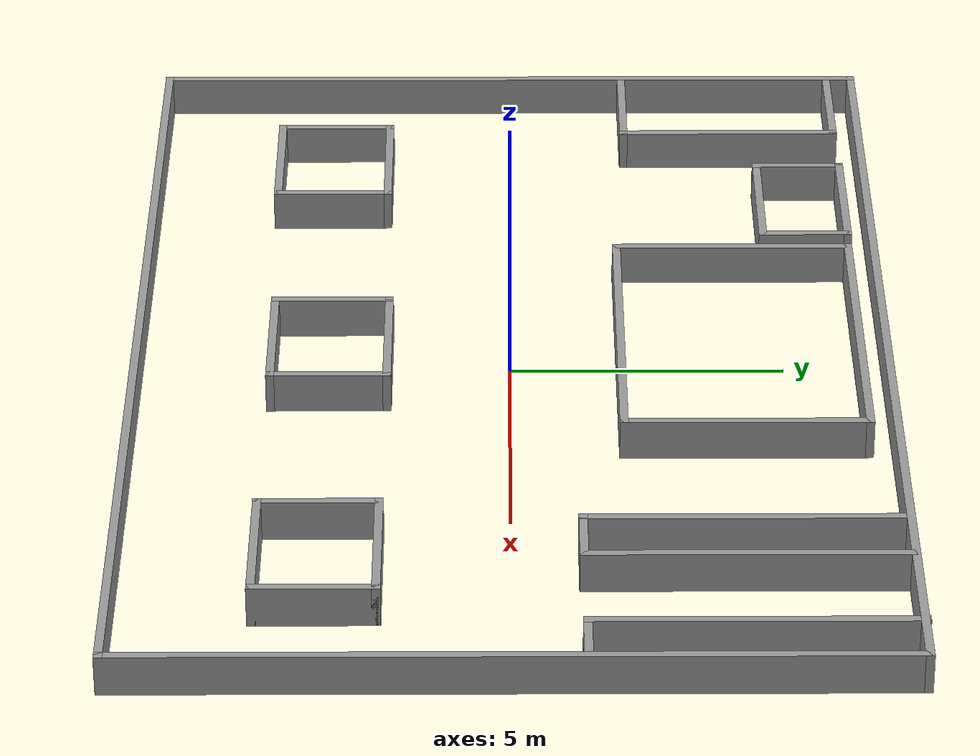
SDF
<?xml version='1.0'?>
<sdf version='1.7'>
  <model name='testbed_wall'>
    <pose>0.016054 0.050121 -0.875 0 -0 0</pose>
    <link name='Wall_0'>
      <collision name='Wall_0_Collision'>
        <geometry>
          <box>
            <size>13.75 0.15 0.75</size>
          </box>
        </geometry>
        <pose>0 0 1.25 0 -0 0</pose>
      </collision>
      <visual name='Wall_0_Visual'>
        <pose>0 0 1.25 0 -0 0</pose>
        <geometry>
          <box>
            <size>13.75 0.15 0.75</size>
          </box>
        </geometry>
        <material>
          <script>
            <uri>file://media/materials/scripts/gazebo.material</uri>
            <name>Gazebo/Grey</name>
          </script>
          <ambient>1 1 1 1</ambient>
        </material>
        <meta>
          <layer>0</layer>
        </meta>
      </visual>
      <pose>-9.925 -0.011258 0 0 -0 -1.5708</pose>
    </link>
    <link name='Wall_1'>
      <collision name='Wall_1_Collision'>
        <geometry>
          <box>
            <size>20 0.15 0.75</size>
          </box>
        </geometry>
        <pose>0 0 1.25 0 -0 0</pose>
      </collision>
      <visual name='Wall_1_Visual'>
        <pose>0 0 1.25 0 -0 0</pose>
        <geometry>
          <box>
            <size>20 0.15 0.75</size>
          </box>
        </geometry>
        <material>
          <script>
            <uri>file://media/materials/scripts/gazebo.material</uri>
            <name>Gazebo/Grey</name>
          </script>
          <ambient>1 1 1 1</ambient>
        </material>
        <meta>
          <layer>0</layer>
        </meta>
      </visual>
      <pose>-0 -6.81126 0 0 -0 0</pose>
    </link>
    <link name='Wall_10'>
      <collision name='Wall_10_Collision'>
        <geometry>
          <box>
            <size>6.25 0.15 0.75</size>
          </box>
        </geometry>
        <pose>0 0 1.25 0 -0 0</pose>
      </collision>
      <visual name='Wall_10_Visual'>
        <pose>0 0 1.25 0 -0 0</pose>
        <geometry>
          <box>
            <size>6.25 0.15 0.75</size>
          </box>
        </geometry>
        <material>
          <script>
            <uri>file://media/materials/scripts/gazebo.material</uri>
            <name>Gazebo/Grey</name>
          </script>
          <ambient>1 1 1 1</ambient>
        </material>
        <meta>
          <layer>0</layer>
        </meta>
      </visual>
      <pose>-0.22495 1.95994 0 0 -0 0</pose>
    </link>
    <link name='Wall_11'>
      <collision name='Wall_11_Collision'>
        <geometry>
          <box>
            <size>4.5 0.15 0.75</size>
          </box>
        </geometry>
        <pose>0 0 1.25 0 -0 0</pose>
      </collision>
      <visual name='Wall_11_Visual'>
        <pose>0 0 1.25 0 -0 0</pose>
        <geometry>
          <box>
            <size>4.5 0.15 0.75</size>
          </box>
        </geometry>
        <material>
          <script>
            <uri>file://media/materials/scripts/gazebo.material</uri>
            <name>Gazebo/Grey</name>
          </script>
          <ambient>1 1 1 1</ambient>
        </material>
        <meta>
          <layer>0</layer>
        </meta>
      </visual>
      <pose>2.82505 4.13494 0 0 -0 1.5708</pose>
    </link>
    <link name='Wall_12'>
      <collision name='Wall_12_Collision'>
        <geometry>
          <box>
            <size>6.25 0.15 0.75</size>
          </box>
        </geometry>
        <pose>0 0 1.25 0 -0 0</pose>
      </collision>
      <visual name='Wall_12_Visual'>
        <pose>0 0 1.25 0 -0 0</pose>
        <geometry>
          <box>
            <size>6.25 0.15 0.75</size>
          </box>
        </geometry>
        <material>
          <script>
            <uri>file://media/materials/scripts/gazebo.material</uri>
            <name>Gazebo/Grey</name>
          </script>
          <ambient>1 1 1 1</ambient>
        </material>
        <meta>
          <layer>0</layer>
        </meta>
      </visual>
      <pose>-0.22495 6.30994 0 0 -0 3.14159</pose>
    </link>
    <link name='Wall_14'>
      <collision name='Wall_14_Collision'>
        <geometry>
          <box>
            <size>1.75 0.15 0.75</size>
          </box>
        </geometry>
        <pose>0 0 1.25 0 -0 0</pose>
      </collision>
      <visual name='Wall_14_Visual'>
        <pose>0 0 1.25 0 -0 0</pose>
        <geometry>
          <box>
            <size>1.75 0.15 0.75</size>
          </box>
        </geometry>
        <material>
          <script>
            <uri>file://media/materials/scripts/gazebo.material</uri>
            <name>Gazebo/Grey</name>
          </script>
          <ambient>1 1 1 1</ambient>
        </material>
        <meta>
          <layer>0</layer>
        </meta>
      </visual>
      <pose>-6.36057 5.53654 0 0 -0 -1.5708</pose>
    </link>
    <link name='Wall_15'>
      <collision name='Wall_15_Collision'>
        <geometry>
          <box>
            <size>2.75 0.15 0.75</size>
          </box>
        </geometry>
        <pose>0 0 1.25 0 -0 0</pose>
      </collision>
      <visual name='Wall_15_Visual'>
        <pose>0 0 1.25 0 -0 0</pose>
        <geometry>
          <box>
            <size>2.75 0.15 0.75</size>
          </box>
        </geometry>
        <material>
          <script>
            <uri>file://media/materials/scripts/gazebo.material</uri>
            <name>Gazebo/Grey</name>
          </script>
          <ambient>1 1 1 1</ambient>
        </material>
        <meta>
          <layer>0</layer>
        </meta>
      </visual>
      <pose>-5.06057 4.73654 0 0 -0 0</pose>
    </link>
    <link name='Wall_16'>
      <collision name='Wall_16_Collision'>
        <geometry>
          <box>
            <size>1.75 0.15 0.75</size>
          </box>
        </geometry>
        <pose>0 0 1.25 0 -0 0</pose>
      </collision>
      <visual name='Wall_16_Visual'>
        <pose>0 0 1.25 0 -0 0</pose>
        <geometry>
          <box>
            <size>1.75 0.15 0.75</size>
          </box>
        </geometry>
        <material>
          <script>
            <uri>file://media/materials/scripts/gazebo.material</uri>
            <name>Gazebo/Grey</name>
          </script>
          <ambient>1 1 1 1</ambient>
        </material>
        <meta>
          <layer>0</layer>
        </meta>
      </visual>
      <pose>-3.76057 5.53654 0 0 -0 1.5708</pose>
    </link>
    <link name='Wall_17'>
      <collision name='Wall_17_Collision'>
        <geometry>
          <box>
            <size>2.75 0.15 0.75</size>
          </box>
        </geometry>
        <pose>0 0 1.25 0 -0 0</pose>
      </collision>
      <visual name='Wall_17_Visual'>
        <pose>0 0 1.25 0 -0 0</pose>
        <geometry>
          <box>
            <size>2.75 0.15 0.75</size>
          </box>
        </geometry>
        <material>
          <script>
            <uri>file://media/materials/scripts/gazebo.material</uri>
            <name>Gazebo/Grey</name>
          </script>
          <ambient>1 1 1 1</ambient>
        </material>
        <meta>
          <layer>0</layer>
        </meta>
      </visual>
      <pose>-5.06057 6.33654 0 0 -0 3.14159</pose>
    </link>
    <link name='Wall_19'>
      <collision name='Wall_19_Collision'>
        <geometry>
          <box>
            <size>2.25 0.15 0.75</size>
          </box>
        </geometry>
        <pose>0 0 1.25 0 -0 0</pose>
      </collision>
      <visual name='Wall_19_Visual'>
        <pose>0 0 1.25 0 -0 0</pose>
        <geometry>
          <box>
            <size>2.25 0.15 0.75</size>
          </box>
        </geometry>
        <material>
          <script>
            <uri>file://media/materials/scripts/gazebo.material</uri>
            <name>Gazebo/Grey</name>
          </script>
          <ambient>1 1 1 1</ambient>
        </material>
        <meta>
          <layer>0</layer>
        </meta>
      </visual>
      <pose>-8.73508 6.30156 0 0 -0 0</pose>
    </link>
    <link name='Wall_2'>
      <collision name='Wall_2_Collision'>
        <geometry>
          <box>
            <size>13.75 0.15 0.75</size>
          </box>
        </geometry>
        <pose>0 0 1.25 0 -0 0</pose>
      </collision>
      <visual name='Wall_2_Visual'>
        <pose>0 0 1.25 0 -0 0</pose>
        <geometry>
          <box>
            <size>13.75 0.15 0.75</size>
          </box>
        </geometry>
        <material>
          <script>
            <uri>file://media/materials/scripts/gazebo.material</uri>
            <name>Gazebo/Grey</name>
          </script>
          <ambient>1 1 1 1</ambient>
        </material>
        <meta>
          <layer>0</layer>
        </meta>
      </visual>
      <pose>9.925 -0.011258 0 0 -0 1.5708</pose>
    </link>
    <link name='Wall_21'>
      <collision name='Wall_21_Collision'>
        <geometry>
          <box>
            <size>4.25 0.15 0.75</size>
          </box>
        </geometry>
        <pose>0 0 1.25 0 -0 0</pose>
      </collision>
      <visual name='Wall_21_Visual'>
        <pose>0 0 1.25 0 -0 0</pose>
        <geometry>
          <box>
            <size>4.25 0.15 0.75</size>
          </box>
        </geometry>
        <material>
          <script>
            <uri>file://media/materials/scripts/gazebo.material</uri>
            <name>Gazebo/Grey</name>
          </script>
          <ambient>1 1 1 1</ambient>
        </material>
        <meta>
          <layer>0</layer>
        </meta>
      </visual>
      <pose>-7.68508 4.25156 0 0 -0 -1.5708</pose>
    </link>
    <link name='Wall_22'>
      <collision name='Wall_22_Collision'>
        <geometry>
          <box>
            <size>2.25 0.15 0.75</size>
          </box>
        </geometry>
        <pose>0 0 1.25 0 -0 0</pose>
      </collision>
      <visual name='Wall_22_Visual'>
        <pose>0 0 1.25 0 -0 0</pose>
        <geometry>
          <box>
            <size>2.25 0.15 0.75</size>
          </box>
        </geometry>
        <material>
          <script>
            <uri>file://media/materials/scripts/gazebo.material</uri>
            <name>Gazebo/Grey</name>
          </script>
          <ambient>1 1 1 1</ambient>
        </material>
        <meta>
          <layer>0</layer>
        </meta>
      </visual>
      <pose>-8.73508 2.20156 0 0 -0 3.14159</pose>
    </link>
    <link name='Wall_24'>
      <collision name='Wall_24_Collision'>
        <geometry>
          <box>
            <size>5.75 0.15 0.75</size>
          </box>
        </geometry>
        <pose>0 0 1.25 0 -0 0</pose>
      </collision>
      <visual name='Wall_24_Visual'>
        <pose>0 0 1.25 0 -0 0</pose>
        <geometry>
          <box>
            <size>5.75 0.15 0.75</size>
          </box>
        </geometry>
        <material>
          <script>
            <uri>file://media/materials/scripts/gazebo.material</uri>
            <name>Gazebo/Grey</name>
          </script>
          <ambient>1 1 1 1</ambient>
        </material>
        <meta>
          <layer>0</layer>
        </meta>
      </visual>
      <pose>5.87345 3.98466 0 0 -0 -1.5708</pose>
    </link>
    <link name='Wall_25'>
      <collision name='Wall_25_Collision'>
        <geometry>
          <box>
            <size>1.25 0.15 0.75</size>
          </box>
        </geometry>
        <pose>0 0 1.25 0 -0 0</pose>
      </collision>
      <visual name='Wall_25_Visual'>
        <pose>0 0 1.25 0 -0 0</pose>
        <geometry>
          <box>
            <size>1.25 0.15 0.75</size>
          </box>
        </geometry>
        <material>
          <script>
            <uri>file://media/materials/scripts/gazebo.material</uri>
            <name>Gazebo/Grey</name>
          </script>
          <ambient>1 1 1 1</ambient>
        </material>
        <meta>
          <layer>0</layer>
        </meta>
      </visual>
      <pose>6.42345 1.18466 0 0 -0 0</pose>
    </link>
    <link name='Wall_26'>
      <collision name='Wall_26_Collision'>
        <geometry>
          <box>
            <size>5.75 0.15 0.75</size>
          </box>
        </geometry>
        <pose>0 0 1.25 0 -0 0</pose>
      </collision>
      <visual name='Wall_26_Visual'>
        <pose>0 0 1.25 0 -0 0</pose>
        <geometry>
          <box>
            <size>5.75 0.15 0.75</size>
          </box>
        </geometry>
        <material>
          <script>
            <uri>file://media/materials/scripts/gazebo.material</uri>
            <name>Gazebo/Grey</name>
          </script>
          <ambient>1 1 1 1</ambient>
        </material>
        <meta>
          <layer>0</layer>
        </meta>
      </visual>
      <pose>6.97345 3.98466 0 0 -0 1.5708</pose>
    </link>
    <link name='Wall_28'>
      <collision name='Wall_28_Collision'>
        <geometry>
          <box>
            <size>5.75 0.15 0.75</size>
          </box>
        </geometry>
        <pose>0 0 1.25 0 -0 0</pose>
      </collision>
      <visual name='Wall_28_Visual'>
        <pose>0 0 1.25 0 -0 0</pose>
        <geometry>
          <box>
            <size>5.75 0.15 0.75</size>
          </box>
        </geometry>
        <material>
          <script>
            <uri>file://media/materials/scripts/gazebo.material</uri>
            <name>Gazebo/Grey</name>
          </script>
          <ambient>1 1 1 1</ambient>
        </material>
        <meta>
          <layer>0</layer>
        </meta>
      </visual>
      <pose>8.93247 4.01126 0 0 -0 -1.5708</pose>
    </link>
    <link name='Wall_29'>
      <collision name='Wall_29_Collision'>
        <geometry>
          <box>
            <size>1 0.15 0.75</size>
          </box>
        </geometry>
        <pose>0 0 1.25 0 -0 0</pose>
      </collision>
      <visual name='Wall_29_Visual'>
        <pose>0 0 1.25 0 -0 0</pose>
        <geometry>
          <box>
            <size>1 0.15 0.75</size>
          </box>
        </geometry>
        <material>
          <script>
            <uri>file://media/materials/scripts/gazebo.material</uri>
            <name>Gazebo/Grey</name>
          </script>
          <ambient>1 1 1 1</ambient>
        </material>
        <meta>
          <layer>0</layer>
        </meta>
      </visual>
      <pose>9.35747 1.21126 0 0 -0 0</pose>
    </link>
    <link name='Wall_3'>
      <collision name='Wall_3_Collision'>
        <geometry>
          <box>
            <size>20 0.15 0.75</size>
          </box>
        </geometry>
        <pose>0 0 1.25 0 -0 0</pose>
      </collision>
      <visual name='Wall_3_Visual'>
        <pose>0 0 1.25 0 -0 0</pose>
        <geometry>
          <box>
            <size>20 0.15 0.75</size>
          </box>
        </geometry>
        <material>
          <script>
            <uri>file://media/materials/scripts/gazebo.material</uri>
            <name>Gazebo/Grey</name>
          </script>
          <ambient>1 1 1 1</ambient>
        </material>
        <meta>
          <layer>0</layer>
        </meta>
      </visual>
      <pose>-0 6.78874 0 0 -0 3.14159</pose>
    </link>
    <link name='Wall_31'>
      <collision name='Wall_31_Collision'>
        <geometry>
          <box>
            <size>2.25 0.15 0.75</size>
          </box>
        </geometry>
        <pose>0 0 1.25 0 -0 0</pose>
      </collision>
      <visual name='Wall_31_Visual'>
        <pose>0 0 1.25 0 -0 0</pose>
        <geometry>
          <box>
            <size>2.25 0.15 0.75</size>
          </box>
        </geometry>
        <material>
          <script>
            <uri>file://media/materials/scripts/gazebo.material</uri>
            <name>Gazebo/Grey</name>
          </script>
          <ambient>1 1 1 1</ambient>
        </material>
        <meta>
          <layer>0</layer>
        </meta>
      </visual>
      <pose>-7.93206 -3.41581 0 0 -0 -1.5708</pose>
    </link>
    <link name='Wall_32'>
      <collision name='Wall_32_Collision'>
        <geometry>
          <box>
            <size>2.75 0.15 0.75</size>
          </box>
        </geometry>
        <pose>0 0 1.25 0 -0 0</pose>
      </collision>
      <visual name='Wall_32_Visual'>
        <pose>0 0 1.25 0 -0 0</pose>
        <geometry>
          <box>
            <size>2.75 0.15 0.75</size>
          </box>
        </geometry>
        <material>
          <script>
            <uri>file://media/materials/scripts/gazebo.material</uri>
            <name>Gazebo/Grey</name>
          </script>
          <ambient>1 1 1 1</ambient>
        </material>
        <meta>
          <layer>0</layer>
        </meta>
      </visual>
      <pose>-6.63205 -4.46581 0 0 -0 0</pose>
    </link>
    <link name='Wall_33'>
      <collision name='Wall_33_Collision'>
        <geometry>
          <box>
            <size>2.25 0.15 0.75</size>
          </box>
        </geometry>
        <pose>0 0 1.25 0 -0 0</pose>
      </collision>
      <visual name='Wall_33_Visual'>
        <pose>0 0 1.25 0 -0 0</pose>
        <geometry>
          <box>
            <size>2.25 0.15 0.75</size>
          </box>
        </geometry>
        <material>
          <script>
            <uri>file://media/materials/scripts/gazebo.material</uri>
            <name>Gazebo/Grey</name>
          </script>
          <ambient>1 1 1 1</ambient>
        </material>
        <meta>
          <layer>0</layer>
        </meta>
      </visual>
      <pose>-5.33205 -3.41581 0 0 -0 1.5708</pose>
    </link>
    <link name='Wall_34'>
      <collision name='Wall_34_Collision'>
        <geometry>
          <box>
            <size>2.75 0.15 0.75</size>
          </box>
        </geometry>
        <pose>0 0 1.25 0 -0 0</pose>
      </collision>
      <visual name='Wall_34_Visual'>
        <pose>0 0 1.25 0 -0 0</pose>
        <geometry>
          <box>
            <size>2.75 0.15 0.75</size>
          </box>
        </geometry>
        <material>
          <script>
            <uri>file://media/materials/scripts/gazebo.material</uri>
            <name>Gazebo/Grey</name>
          </script>
          <ambient>1 1 1 1</ambient>
        </material>
        <meta>
          <layer>0</layer>
        </meta>
      </visual>
      <pose>-6.63205 -2.36581 0 0 -0 3.14159</pose>
    </link>
    <link name='Wall_36'>
      <collision name='Wall_36_Collision'>
        <geometry>
          <box>
            <size>2.25 0.15 0.75</size>
          </box>
        </geometry>
        <pose>0 0 1.25 0 -0 0</pose>
      </collision>
      <visual name='Wall_36_Visual'>
        <pose>0 0 1.25 0 -0 0</pose>
        <geometry>
          <box>
            <size>2.25 0.15 0.75</size>
          </box>
        </geometry>
        <material>
          <script>
            <uri>file://media/materials/scripts/gazebo.material</uri>
            <name>Gazebo/Grey</name>
          </script>
          <ambient>1 1 1 1</ambient>
        </material>
        <meta>
          <layer>0</layer>
        </meta>
      </visual>
      <pose>-1.3618 -3.30941 0 0 -0 -1.5708</pose>
    </link>
    <link name='Wall_37'>
      <collision name='Wall_37_Collision'>
        <geometry>
          <box>
            <size>2.75 0.15 0.75</size>
          </box>
        </geometry>
        <pose>0 0 1.25 0 -0 0</pose>
      </collision>
      <visual name='Wall_37_Visual'>
        <pose>0 0 1.25 0 -0 0</pose>
        <geometry>
          <box>
            <size>2.75 0.15 0.75</size>
          </box>
        </geometry>
        <material>
          <script>
            <uri>file://media/materials/scripts/gazebo.material</uri>
            <name>Gazebo/Grey</name>
          </script>
          <ambient>1 1 1 1</ambient>
        </material>
        <meta>
          <layer>0</layer>
        </meta>
      </visual>
      <pose>-0.061805 -4.35941 0 0 -0 0</pose>
    </link>
    <link name='Wall_38'>
      <collision name='Wall_38_Collision'>
        <geometry>
          <box>
            <size>2.25 0.15 0.75</size>
          </box>
        </geometry>
        <pose>0 0 1.25 0 -0 0</pose>
      </collision>
      <visual name='Wall_38_Visual'>
        <pose>0 0 1.25 0 -0 0</pose>
        <geometry>
          <box>
            <size>2.25 0.15 0.75</size>
          </box>
        </geometry>
        <material>
          <script>
            <uri>file://media/materials/scripts/gazebo.material</uri>
            <name>Gazebo/Grey</name>
          </script>
          <ambient>1 1 1 1</ambient>
        </material>
        <meta>
          <layer>0</layer>
        </meta>
      </visual>
      <pose>1.23819 -3.30941 0 0 -0 1.5708</pose>
    </link>
    <link name='Wall_39'>
      <collision name='Wall_39_Collision'>
        <geometry>
          <box>
            <size>2.75 0.15 0.75</size>
          </box>
        </geometry>
        <pose>0 0 1.25 0 -0 0</pose>
      </collision>
      <visual name='Wall_39_Visual'>
        <pose>0 0 1.25 0 -0 0</pose>
        <geometry>
          <box>
            <size>2.75 0.15 0.75</size>
          </box>
        </geometry>
        <material>
          <script>
            <uri>file://media/materials/scripts/gazebo.material</uri>
            <name>Gazebo/Grey</name>
          </script>
          <ambient>1 1 1 1</ambient>
        </material>
        <meta>
          <layer>0</layer>
        </meta>
      </visual>
      <pose>-0.061805 -2.25941 0 0 -0 3.14159</pose>
    </link>
    <link name='Wall_4'>
      <collision name='Wall_4_Collision'>
        <geometry>
          <box>
            <size>13.75 0.15 0.75</size>
          </box>
        </geometry>
        <pose>0 0 1.25 0 -0 0</pose>
      </collision>
      <visual name='Wall_4_Visual'>
        <pose>0 0 1.25 0 -0 0</pose>
        <geometry>
          <box>
            <size>13.75 0.15 0.75</size>
          </box>
        </geometry>
        <material>
          <script>
            <uri>file://media/materials/scripts/gazebo.material</uri>
            <name>Gazebo/Grey</name>
          </script>
          <ambient>1 1 1 1</ambient>
        </material>
        <meta>
          <layer>0</layer>
        </meta>
      </visual>
      <pose>-9.925 -0.011258 0 0 -0 -1.5708</pose>
    </link>
    <link name='Wall_41'>
      <collision name='Wall_41_Collision'>
        <geometry>
          <box>
            <size>2.25 0.15 0.75</size>
          </box>
        </geometry>
        <pose>0 0 1.25 0 -0 0</pose>
      </collision>
      <visual name='Wall_41_Visual'>
        <pose>0 0 1.25 0 -0 0</pose>
        <geometry>
          <box>
            <size>2.25 0.15 0.75</size>
          </box>
        </geometry>
        <material>
          <script>
            <uri>file://media/materials/scripts/gazebo.material</uri>
            <name>Gazebo/Grey</name>
          </script>
          <ambient>1 1 1 1</ambient>
        </material>
        <meta>
          <layer>0</layer>
        </meta>
      </visual>
      <pose>5.36805 -3.36261 0 0 -0 -1.5708</pose>
    </link>
    <link name='Wall_42'>
      <collision name='Wall_42_Collision'>
        <geometry>
          <box>
            <size>2.75 0.15 0.75</size>
          </box>
        </geometry>
        <pose>0 0 1.25 0 -0 0</pose>
      </collision>
      <visual name='Wall_42_Visual'>
        <pose>0 0 1.25 0 -0 0</pose>
        <geometry>
          <box>
            <size>2.75 0.15 0.75</size>
          </box>
        </geometry>
        <material>
          <script>
            <uri>file://media/materials/scripts/gazebo.material</uri>
            <name>Gazebo/Grey</name>
          </script>
          <ambient>1 1 1 1</ambient>
        </material>
        <meta>
          <layer>0</layer>
        </meta>
      </visual>
      <pose>6.66805 -4.41261 0 0 -0 0</pose>
    </link>
    <link name='Wall_43'>
      <collision name='Wall_43_Collision'>
        <geometry>
          <box>
            <size>2.25 0.15 0.75</size>
          </box>
        </geometry>
        <pose>0 0 1.25 0 -0 0</pose>
      </collision>
      <visual name='Wall_43_Visual'>
        <pose>0 0 1.25 0 -0 0</pose>
        <geometry>
          <box>
            <size>2.25 0.15 0.75</size>
          </box>
        </geometry>
        <material>
          <script>
            <uri>file://media/materials/scripts/gazebo.material</uri>
            <name>Gazebo/Grey</name>
          </script>
          <ambient>1 1 1 1</ambient>
        </material>
        <meta>
          <layer>0</layer>
        </meta>
      </visual>
      <pose>7.96805 -3.36261 0 0 -0 1.5708</pose>
    </link>
    <link name='Wall_44'>
      <collision name='Wall_44_Collision'>
        <geometry>
          <box>
            <size>2.75 0.15 0.75</size>
          </box>
        </geometry>
        <pose>0 0 1.25 0 -0 0</pose>
      </collision>
      <visual name='Wall_44_Visual'>
        <pose>0 0 1.25 0 -0 0</pose>
        <geometry>
          <box>
            <size>2.75 0.15 0.75</size>
          </box>
        </geometry>
        <material>
          <script>
            <uri>file://media/materials/scripts/gazebo.material</uri>
            <name>Gazebo/Grey</name>
          </script>
          <ambient>1 1 1 1</ambient>
        </material>
        <meta>
          <layer>0</layer>
        </meta>
      </visual>
      <pose>6.66805 -2.31261 0 0 -0 3.14159</pose>
    </link>
    <link name='Wall_5'>
      <collision name='Wall_5_Collision'>
        <geometry>
          <box>
            <size>20 0.15 0.75</size>
          </box>
        </geometry>
        <pose>0 0 1.25 0 -0 0</pose>
      </collision>
      <visual name='Wall_5_Visual'>
        <pose>0 0 1.25 0 -0 0</pose>
        <geometry>
          <box>
            <size>20 0.15 0.75</size>
          </box>
        </geometry>
        <material>
          <script>
            <uri>file://media/materials/scripts/gazebo.material</uri>
            <name>Gazebo/Grey</name>
          </script>
          <ambient>1 1 1 1</ambient>
        </material>
        <meta>
          <layer>0</layer>
        </meta>
      </visual>
      <pose>-0 -6.81126 0 0 -0 0</pose>
    </link>
    <link name='Wall_6'>
      <collision name='Wall_6_Collision'>
        <geometry>
          <box>
            <size>13.75 0.15 0.75</size>
          </box>
        </geometry>
        <pose>0 0 1.25 0 -0 0</pose>
      </collision>
      <visual name='Wall_6_Visual'>
        <pose>0 0 1.25 0 -0 0</pose>
        <geometry>
          <box>
            <size>13.75 0.15 0.75</size>
          </box>
        </geometry>
        <material>
          <script>
            <uri>file://media/materials/scripts/gazebo.material</uri>
            <name>Gazebo/Grey</name>
          </script>
          <ambient>1 1 1 1</ambient>
        </material>
        <meta>
          <layer>0</layer>
        </meta>
      </visual>
      <pose>9.925 -0.011258 0 0 -0 1.5708</pose>
    </link>
    <link name='Wall_8'>
      <collision name='Wall_8_Collision'>
        <geometry>
          <box>
            <size>4.5 0.15 0.75</size>
          </box>
        </geometry>
        <pose>0 0 1.25 0 -0 0</pose>
      </collision>
      <visual name='Wall_8_Visual'>
        <pose>0 0 1.25 0 -0 0</pose>
        <geometry>
          <box>
            <size>4.5 0.15 0.75</size>
          </box>
        </geometry>
        <material>
          <script>
            <uri>file://media/materials/scripts/gazebo.material</uri>
            <name>Gazebo/Grey</name>
          </script>
          <ambient>1 1 1 1</ambient>
        </material>
        <meta>
          <layer>0</layer>
        </meta>
      </visual>
      <pose>-3.27495 4.13494 0 0 -0 -1.5708</pose>
    </link>
    <static>1</static>
  </model>
</sdf>
